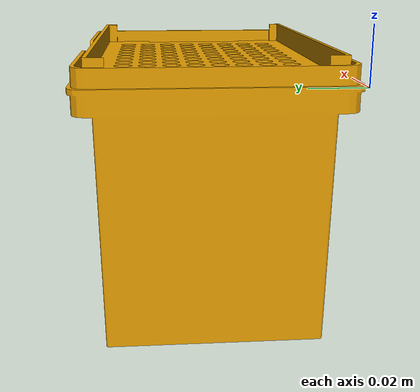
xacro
<?xml version="1.0" ?>
<robot xmlns:xacro="http://www.ros.org/wiki/xacro" name="tiprack_box">
    <link name='tiprack_box'>
        <visual name='visual'>
            <geometry>
                <mesh filename="meshes/tiprack_box.stl"/>
            </geometry>
            <material name="clay" />
        </visual>
    </link>
</robot>
